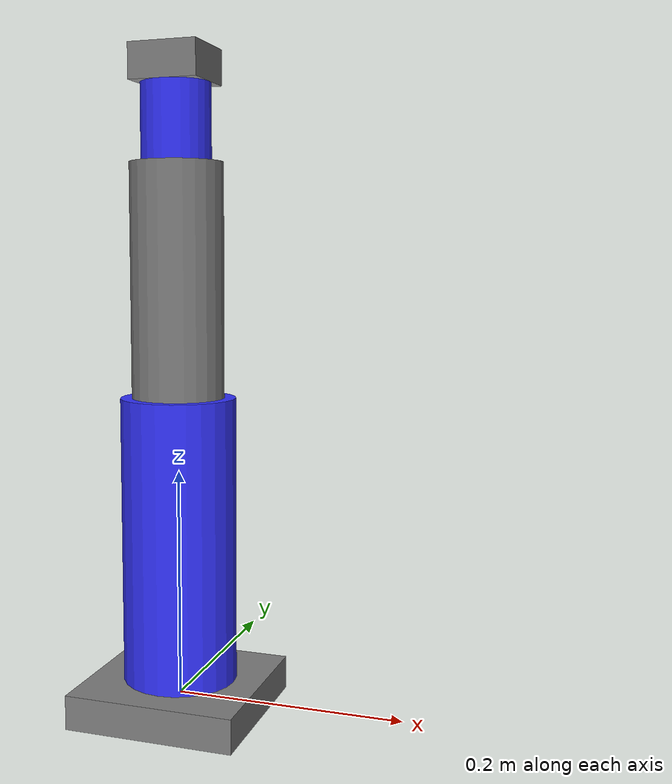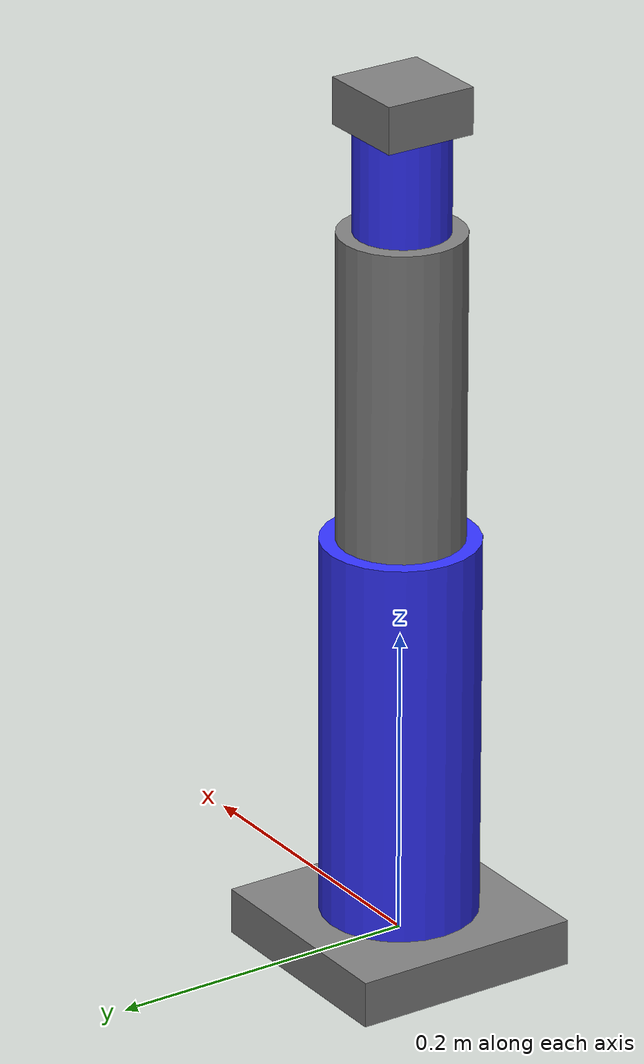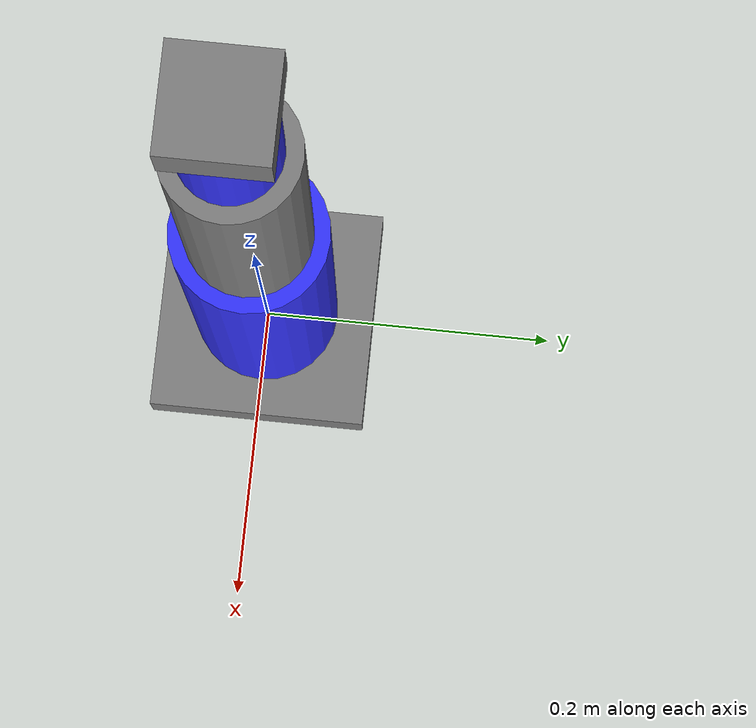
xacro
<?xml version="1.0"?>
<robot xmlns:xacro="http://www.ros.org/wiki/xacro">

  <!-- Incluir propiedades comunes para materiales (ya se incluye en robot.xacro, pero se añade para claridad) -->
  <xacro:include filename="$(find robot_description)/urdf/common_properties.xacro" />

  <!-- Base del brazo (se conectará a la base del robot principal) -->
  <link name="arm_base_link">
    <visual>
      <geometry>
        <box size="0.15 0.15 0.03"/> <!-- Base más ancha y plana -->
      </geometry>
      <material name="grey"/> <!-- Usando material de common_properties -->
    </visual>
    <collision>
      <geometry>
        <box size="0.15 0.15 0.03"/>
      </geometry>
    </collision>
    <inertial>
      <origin xyz="0 0 0" rpy="0 0 0"/>
      <mass value="0.7"/>
      <inertia ixx="0.002" ixy="0.0" ixz="0.0"
               iyy="0.002" iyz="0.0"
               izz="0.002"/>
    </inertial>
  </link>

  <!-- Articulación del hombro (revolute para rotación horizontal) -->
  <joint name="shoulder_joint" type="revolute">
    <parent link="arm_base_link"/>
    <child link="shoulder_link"/>
    <origin xyz="0 0 0.015" rpy="0 0 0"/> <!-- Posición encima de la base del brazo -->
    <axis xyz="0 0 1"/> <!-- Rotación alrededor del eje Z (horizontal) -->
    <limit lower="-1.8" upper="1.8" effort="100" velocity="0.5"/>
  </joint>

  <link name="shoulder_link">
    <visual>
      <geometry>
        <cylinder radius="0.05" length="0.25"/> <!-- Cilindro para el segmento del brazo -->
      </geometry>
      <origin xyz="0 0 0.125" rpy="0 0 0"/> <!-- Centrar el cilindro para que extienda hacia arriba -->
      <material name="blue"/> <!-- Color diferente para el segmento -->
    </visual>
    <collision>
      <geometry>
        <cylinder radius="0.05" length="0.25"/>
      </geometry>
      <origin xyz="0 0 0.125" rpy="0 0 0"/>
    </collision>
    <inertial>
      <origin xyz="0 0 0.125" rpy="0 0 0"/>
      <mass value="0.6"/>
      <inertia ixx="0.0015" ixy="0.0" ixz="0.0"
               iyy="0.0015" iyz="0.0"
               izz="0.0015"/>
    </inertial>
  </link>

  <!-- Articulación del codo (revolute para rotación vertical) -->
  <joint name="elbow_joint" type="revolute">
    <parent link="shoulder_link"/>
    <child link="elbow_link"/>
    <origin xyz="0 0 0.25" rpy="0 0 0"/> <!-- En la parte superior del eslabón del hombro -->
    <axis xyz="0 1 0"/> <!-- Rotación alrededor del eje Y (vertical) -->
    <limit lower="-1.8" upper="1.8" effort="100" velocity="0.5"/>
  </joint>

  <link name="elbow_link">
    <visual>
      <geometry>
        <cylinder radius="0.04" length="0.20"/> <!-- Cilindro más pequeño -->
      </geometry>
      <origin xyz="0 0 0.1" rpy="0 0 0"/>
      <material name="grey"/>
    </visual>
    <collision>
      <geometry>
        <cylinder radius="0.04" length="0.20"/>
      </geometry>
      <origin xyz="0 0 0.1" rpy="0 0 0"/>
    </collision>
    <inertial>
      <origin xyz="0 0 0.1" rpy="0 0 0"/>
      <mass value="0.4"/>
      <inertia ixx="0.0008" ixy="0.0" ixz="0.0"
               iyy="0.0008" iyz="0.0"
               izz="0.0008"/>
    </inertial>
  </link>

  <!-- Articulación de la muñeca (revolute para rotación vertical) -->
  <joint name="wrist_joint" type="revolute">
    <parent link="elbow_link"/>
    <child link="wrist_link"/>
    <origin xyz="0 0 0.2" rpy="0 0 0"/> <!-- En la parte superior del eslabón del codo -->
    <axis xyz="0 1 0"/> <!-- Rotación alrededor del eje Y (vertical) -->
    <limit lower="-1.8" upper="1.8" effort="100" velocity="0.5"/>
  </joint>

  <link name="wrist_link">
    <visual>
      <geometry>
        <cylinder radius="0.03" length="0.08"/> <!-- Cilindro aún más pequeño -->
      </geometry>
      <origin xyz="0 0 0.04" rpy="0 0 0"/>
      <material name="blue"/>
    </visual>
    <collision>
      <geometry>
        <cylinder radius="0.03" length="0.08"/>
      </geometry>
      <origin xyz="0 0 0.04" rpy="0 0 0"/>
    </collision>
    <inertial>
      <origin xyz="0 0 0.04" rpy="0 0 0"/>
      <mass value="0.15"/>
      <inertia ixx="0.0002" ixy="0.0" ixz="0.0"
               iyy="0.0002" iyz="0.0"
               izz="0.0002"/>
    </inertial>
  </link>

  <!-- Efector final (puede ser un simple cubo o un gripper más complejo) -->
  <joint name="end_effector_joint" type="fixed">
    <parent link="wrist_link"/>
    <child link="end_effector_link"/>
    <origin xyz="0 0 0.08" rpy="0 0 0"/> <!-- Posición al final de la muñeca -->
  </joint>

  <link name="end_effector_link">
    <visual>
      <geometry>
        <box size="0.06 0.06 0.03"/> <!-- Caja simple para el efector final -->
      </geometry>
      <material name="grey"/>
    </visual>
    <collision>
      <geometry>
        <box size="0.06 0.06 0.03"/>
      </geometry>
    </collision>
    <inertial>
      <origin xyz="0 0 0" rpy="0 0 0"/>
      <mass value="0.1"/>
      <inertia ixx="0.0001" ixy="0.0" ixz="0.0"
               iyy="0.0001" iyz="0.0"
               izz="0.0001"/>
    </inertial>
  </link>

</robot>

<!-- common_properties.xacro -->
<robot xmlns:xacro="http://www.ros.org/wiki/xacro">

<!-- Material Definition -->
<material name="white">
    <color rgba="1 1 1 0.5"/>
</material>
<material name="red">
    <color rgba="1 0 0 1"/>
</material>
<material name="orange">
    <color rgba="1 0.3 0.1 1"/>
</material>
<material name="blue">
    <color rgba="0.2 0.2 1 1"/>
</material>
<material name="black">
    <color rgba="0 0 0 1"/>
</material>
<material name="grey">
    <color rgba="0.5 0.5 0.5 1"/>
</material>

</robot>
